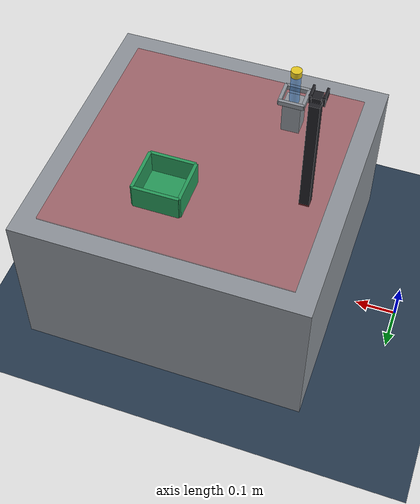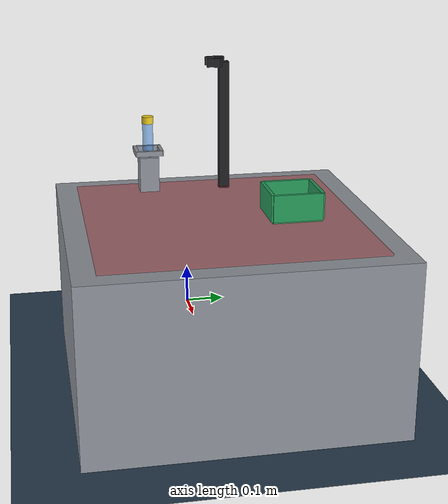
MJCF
<mujoco model="slipzero_bench">
  <option timestep="0.002" cone="elliptic" integrator="implicitfast" impratio="10"/>

  <statistic center="0.4 0 0.4" extent="1.1"/>

  <visual>
    <headlight diffuse="0.6 0.6 0.6" ambient="0.3 0.3 0.3" specular="0 0 0"/>
    <rgba haze="0.15 0.25 0.35 1"/>
    <global azimuth="130" elevation="-22" offwidth="1280" offheight="720"/>
  </visual>

  <asset>
    <texture type="skybox" builtin="gradient" rgb1="0.3 0.5 0.7" rgb2="0 0 0" width="512" height="3072"/>
    <texture type="2d" name="floor_tex" builtin="checker" mark="edge" rgb1="0.2 0.3 0.4"
             rgb2="0.1 0.15 0.2" markrgb="0.8 0.8 0.8" width="300" height="300"/>
    <material name="floor_mat" texture="floor_tex" texuniform="true" texrepeat="5 5" reflectance="0.2"/>
    <material name="bench_mat" rgba="0.55 0.57 0.6 1"/>
    <material name="vial_mat" rgba="0.25 0.55 0.9 0.55"/>
    <material name="cap_mat" rgba="0.9 0.78 0.12 1"/>
    <material name="port_mat" rgba="0.15 0.6 0.35 1"/>
    <material name="decapper_mat" rgba="0.12 0.12 0.14 1"/>
  </asset>

  <worldbody>
    <light name="key" pos="0.6 0.2 1.6" dir="-0.3 -0.1 -1" directional="true"/>

    <geom name="floor" type="plane" size="0 0 0.05" material="floor_mat"/>

    <body name="bench" pos="0.5 0 0.2">
      <geom name="bench_top" type="box" size="0.35 0.35 0.2" material="bench_mat"/>
    </body>

    <geom name="contam_mat" type="box" pos="0.5 0 0.402" size="0.3 0.3 0.002" rgba="0.8 0.12 0.12 0.35"/>

    <body name="rack" pos="0.34 -0.14 0.522">
      <geom name="rack_base" type="box" pos="0 0 -0.052" size="0.022 0.022 0.040" material="bench_mat"/>
      <geom name="rack_px" type="box" pos="0.028 0 0" size="0.004 0.030 0.006" material="bench_mat"/>
      <geom name="rack_nx" type="box" pos="-0.028 0 0" size="0.004 0.030 0.006" material="bench_mat"/>
      <geom name="rack_py" type="box" pos="0 0.028 0" size="0.030 0.004 0.006" material="bench_mat"/>
      <geom name="rack_ny" type="box" pos="0 -0.028 0" size="0.030 0.004 0.006" material="bench_mat"/>
    </body>

    <body name="waste_port" pos="0.55 0.15 0.42">
      <geom name="port_floor" type="box" pos="0 0 0" size="0.055 0.055 0.004" material="port_mat"/>
      <geom name="port_px" type="box" pos="0.055 0 0.03" size="0.004 0.055 0.03" material="port_mat"/>
      <geom name="port_nx" type="box" pos="-0.055 0 0.03" size="0.004 0.055 0.03" material="port_mat"/>
      <geom name="port_py" type="box" pos="0 0.055 0.03" size="0.055 0.004 0.03" material="port_mat"/>
      <geom name="port_ny" type="box" pos="0 -0.055 0.03" size="0.055 0.004 0.03" material="port_mat"/>
      <site name="port_center" pos="0 0 0.03" size="0.005" group="4"/>
    </body>

    <body name="decapper" pos="0.25 0.03 0.707">
      <geom name="decapper_post" type="box" pos="0 0.024 -0.154" size="0.012 0.012 0.154"
            contype="0" conaffinity="0" group="2" material="decapper_mat"/>
      <geom name="decapper_arm" type="box" pos="0 0.012 0" size="0.01 0.012 0.012"
            contype="0" conaffinity="0" group="2" material="decapper_mat"/>
      <geom name="decapper_left" type="box" pos="-0.015 0 0" size="0.0025 0.018 0.010"
            friction="2.0 0.02 0.001" condim="6" material="decapper_mat"/>
      <geom name="decapper_right" type="box" pos="0.015 0 0" size="0.0025 0.018 0.010"
            friction="2.0 0.02 0.001" condim="6" material="decapper_mat"/>
      <geom name="decapper_back" type="box" pos="0 0.015 0" size="0.018 0.0025 0.010"
            friction="2.0 0.02 0.001" condim="6" material="decapper_mat"/>
      <site name="decapper_center" pos="0 -0.014 0.006" size="0.004" group="4"/>
    </body>

    <body name="vial" pos="0.34 -0.14 0.55">
      <freejoint name="vial_free"/>
      <geom name="vial_body" type="cylinder" size="0.012 0.04" friction="1.0 0.01 0.0001"
            condim="6" mass="0.05" material="vial_mat"/>
      <body name="cap" pos="0 0 0.045">
        <joint name="cap_thread" type="hinge" axis="0 0 -1" stiffness="0" damping="0.002" frictionloss="0.01"/>
        <geom name="cap_geom" type="cylinder" size="0.013 0.008" mass="0.005" material="cap_mat"/>
      </body>
    </body>

    <site name="robot_mount" pos="0 0 0" size="0.01" group="4"/>
  </worldbody>

  <sensor>
    <framepos name="vial_pos" objtype="body" objname="vial"/>
    <framequat name="vial_quat" objtype="body" objname="vial"/>
    <jointpos name="cap_thread_pos" joint="cap_thread"/>
  </sensor>
</mujoco>
